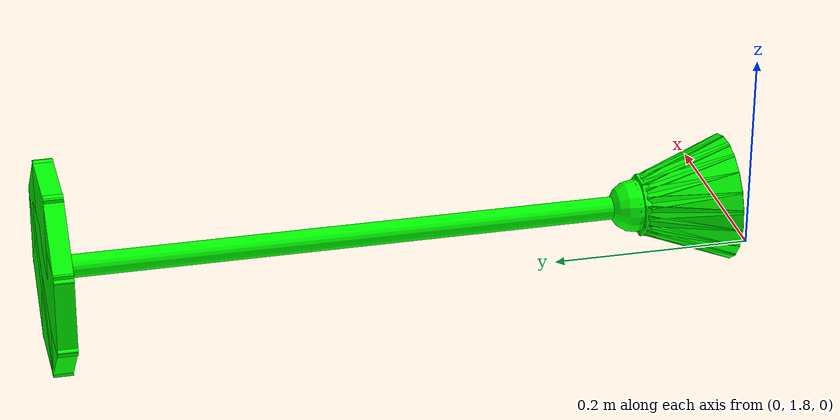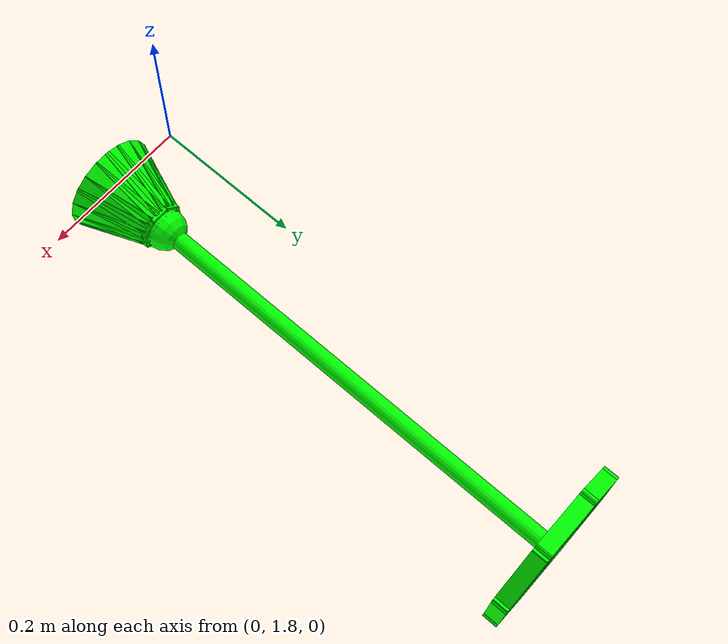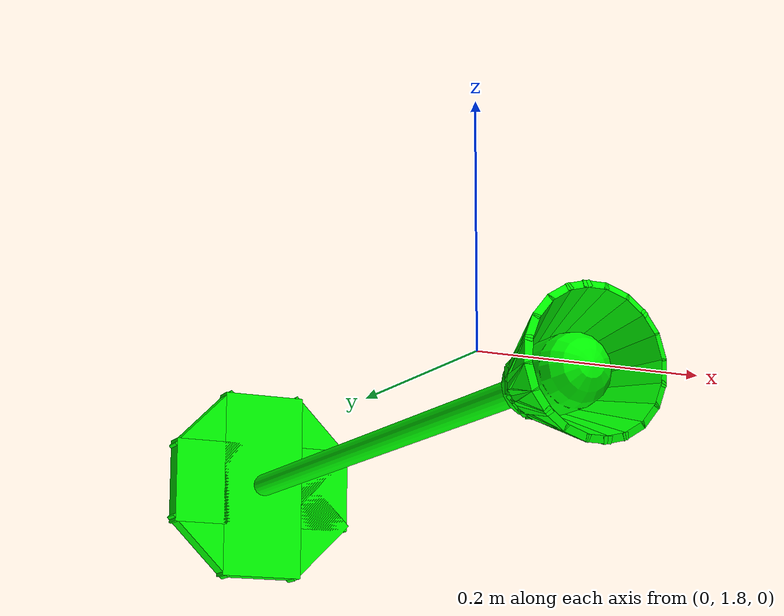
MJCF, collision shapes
<mujoco model="LightFixture2_24118f26">
  <compiler autolimits="true" boundmass="0.01" angle="radian"/>
  <default>
    <default class="/">
      <default class="__VISUAL_MJT__">
        <geom contype="0" conaffinity="0" group="0" mass="1e-08"/>
      </default>
      <default class="__STRUCTURAL_MJT__">
        <geom contype="8" conaffinity="15" group="4" friction="0.90000000000000002 0.90000000000000002 0.001" density="500" solref="0.025000000000000001 1" solimp="0.998 0.998 0.001"/>
      </default>
      <default class="__DYNAMIC_MJT__">
        <geom contype="1" conaffinity="15" group="4" friction="0.90000000000000002 0.90000000000000002 0.001" density="500" solref="0.025000000000000001 1" solimp="0.998 0.998 0.001"/>
      </default>
      <default class="__ARTICULABLE_DYNAMIC_MJT__">
        <geom contype="0" conaffinity="7" group="4" friction="0.90000000000000002 0.90000000000000002 0.001" density="500" solref="0.025000000000000001 1" solimp="0.998 0.998 0.001"/>
      </default>
    </default>
  </default>
  <asset>
    <material name="material_Glass_Detailed_Lit_Medium_Mat" class="/" specular="0.5" shininess="0.5" rgba="1 1 1 0.10000000000000001"/>
    <texture name="Copper_AlbedoTransparency" type="2d" file="Copper_AlbedoTransparency.png"/>
    <material name="material_Copper_AlbedoTransparency" class="/" texture="Copper_AlbedoTransparency" specular="0.5" shininess="0.5" rgba="1 1 1 1"/>
    <material name="material_ToasterDarkMat" class="/" specular="0.5" shininess="0.5" rgba="0.048307559999999999 0.047520819999999998 0.05379747 1"/>
    <material name="material_Light" class="/" specular="0.5" shininess="0.5" rgba="1 0.94411769999999995 0.86029409999999995 1"/>
    <mesh name="LightFixture2_24118f26_LightFixture2_24118f26_0" class="/" file="LightFixture2_24118f26_LightFixture2_24118f26/LightFixture2_24118f26_LightFixture2_24118f26_0.obj" scale="1 1 1" inertia="legacy"/>
    <mesh name="LightFixture2_24118f26_LightFixture2_24118f26_1" class="/" file="LightFixture2_24118f26_LightFixture2_24118f26/LightFixture2_24118f26_LightFixture2_24118f26_1.obj" scale="1 1 1" inertia="legacy"/>
    <mesh name="LightFixture2_24118f26_LightFixture2_24118f26_2" class="/" file="LightFixture2_24118f26_LightFixture2_24118f26/LightFixture2_24118f26_LightFixture2_24118f26_2.obj" scale="1 1 1" inertia="legacy"/>
    <mesh name="LightFixture2_24118f26_LightFixture2_24118f26_3" class="/" file="LightFixture2_24118f26_LightFixture2_24118f26/LightFixture2_24118f26_LightFixture2_24118f26_3.obj" scale="1 1 1" inertia="legacy"/>
  </asset>
  <worldbody>
    <body name="LightFixture2_24118f26">
      <body name="LightFixture2_24118f26_LightFixture2_24118f26" pos="-0 0 0" quat="1 0 0 0">
        <geom name="LightFixture2_24118f26_LightFixture2_24118f26_0" class="__VISUAL_MJT__" type="mesh" material="material_Glass_Detailed_Lit_Medium_Mat" mesh="LightFixture2_24118f26_LightFixture2_24118f26_0"/>
        <geom name="LightFixture2_24118f26_LightFixture2_24118f26_1" class="__VISUAL_MJT__" type="mesh" material="material_Copper_AlbedoTransparency" mesh="LightFixture2_24118f26_LightFixture2_24118f26_1"/>
        <geom name="LightFixture2_24118f26_LightFixture2_24118f26_2" class="__VISUAL_MJT__" type="mesh" material="material_ToasterDarkMat" mesh="LightFixture2_24118f26_LightFixture2_24118f26_2"/>
        <geom name="LightFixture2_24118f26_LightFixture2_24118f26_3" class="__VISUAL_MJT__" type="mesh" material="material_Light" mesh="LightFixture2_24118f26_LightFixture2_24118f26_3"/>
        <geom name="LightFixture2_24118f26_LightFixture2_24118f26_PrimitiveCollider_0" class="__DYNAMIC_MJT__" type="box" size="0.044754870235919952 0.010146094486117363 0.099600106477737427" rgba="0 1 0 1" pos="0.099999994039535522 2.4907031059265137 0" quat="0 1 0 0"/>
        <geom name="LightFixture2_24118f26_LightFixture2_24118f26_PrimitiveCollider_1" class="__DYNAMIC_MJT__" type="box" size="0.044754870235919952 0.010146094486117363 0.099600106477737427" rgba="0 1 0 1" pos="0.099999994039535522 2.4907031059265137 0" quat="0 0.70710716861662282 0 -0.70710639375626005"/>
        <geom name="LightFixture2_24118f26_LightFixture2_24118f26_PrimitiveCollider_2" class="__DYNAMIC_MJT__" type="box" size="0.044754866510629654 0.010146094486117363 0.099600091576576233" rgba="0 1 0 1" pos="0.099999994039535522 2.4907031059265137 0" quat="0 0.3826837590247722 0 -0.92387939720434842"/>
        <geom name="LightFixture2_24118f26_LightFixture2_24118f26_PrimitiveCollider_3" class="__DYNAMIC_MJT__" type="box" size="0.044754870235919952 0.010146094486117363 0.099600106477737427" rgba="0 1 0 1" pos="0.099999994039535522 2.4907031059265137 0" quat="0 0.92387944627232255 0 -0.38268364056430054"/>
        <geom name="LightFixture2_24118f26_LightFixture2_24118f26_PrimitiveCollider_4" class="__DYNAMIC_MJT__" type="capsule" size="0.011795935221016407 0.28961301129311323" rgba="0 1 0 1" pos="0.099999994039535522 2.1875855922698975 0" quat="0.65328142145803181 0.65328142145803192 0.27059819729217222 -0.27059819729217227"/>
        <geom name="LightFixture2_24118f26_LightFixture2_24118f26_PrimitiveCollider_5" class="__DYNAMIC_MJT__" type="capsule" size="0.02753765881061554 1.0000000000000001e-05" rgba="0 1 0 1" pos="0.099999994039535522 1.8879337310791016 0" quat="0.65328142145803181 0.65328142145803192 0.27059819729217222 -0.27059819729217227"/>
        <geom name="LightFixture2_24118f26_LightFixture2_24118f26_PrimitiveCollider_6" class="__DYNAMIC_MJT__" type="box" size="0.011454922147095203 0.0032480955123901367 0.030229024589061737" rgba="0 1 0 1" pos="0.099999994039535522 1.880601167678833 0" quat="0 1 0 0"/>
        <geom name="LightFixture2_24118f26_LightFixture2_24118f26_PrimitiveCollider_7" class="__DYNAMIC_MJT__" type="box" size="0.011454922147095203 0.0032480955123901367 0.030229024589061737" rgba="0 1 0 1" pos="0.099999994039535522 1.880601167678833 0" quat="0 0.70710716861662282 0 -0.70710639375626005"/>
        <geom name="LightFixture2_24118f26_LightFixture2_24118f26_PrimitiveCollider_8" class="__DYNAMIC_MJT__" type="box" size="0.011454921215772629 0.0032480955123901367 0.030229020863771439" rgba="0 1 0 1" pos="0.099999994039535522 1.880601167678833 0" quat="0 0.3826837590247722 0 -0.92387939720434842"/>
        <geom name="LightFixture2_24118f26_LightFixture2_24118f26_PrimitiveCollider_9" class="__DYNAMIC_MJT__" type="box" size="0.011454922147095203 0.0032480955123901367 0.030229024589061737" rgba="0 1 0 1" pos="0.099999994039535522 1.880601167678833 0" quat="0 0.92387944627232255 0 -0.38268364056430054"/>
        <geom name="LightFixture2_24118f26_LightFixture2_24118f26_PrimitiveCollider_10" class="__DYNAMIC_MJT__" type="capsule" size="0.031119788065552711 0.015546990558505058" rgba="0 1 0 1" pos="0.099999994039535522 1.8424336910247803 0" quat="0.65328142145803181 0.65328142145803192 0.27059819729217222 -0.27059819729217227"/>
        <geom name="LightFixture2_24118f26_LightFixture2_24118f26_PrimitiveCollider_11" class="__DYNAMIC_MJT__" type="box" size="0.011454927735030651 0.003248095978051424 0.048705104738473892" rgba="0 1 0 1" pos="0.099999994039535522 1.8348104953765869 0.043759804219007492" quat="0 0 0.56462786680718169 -0.82534560762432829"/>
        <geom name="LightFixture2_24118f26_LightFixture2_24118f26_PrimitiveCollider_12" class="__DYNAMIC_MJT__" type="box" size="0.011454922147095203 0.003248095978051424 0.048705101013183594" rgba="0 1 0 1" pos="0.099999994039535522 1.8348104953765869 -0.043759800493717194" quat="0.56462786680718169 0.82534560762432829 0 0"/>
        <geom name="LightFixture2_24118f26_LightFixture2_24118f26_PrimitiveCollider_13" class="__DYNAMIC_MJT__" type="box" size="0.011454921215772629 0.0032480955123901367 0.048705093562602997" rgba="0 1 0 1" pos="0.11371384561061859 1.8348104953765869 0.041555404663085938" quat="-0.08960984723342473 -0.13098731748194209 0.55747169729439694 -0.81488508677812455"/>
        <geom name="LightFixture2_24118f26_LightFixture2_24118f26_PrimitiveCollider_14" class="__DYNAMIC_MJT__" type="box" size="0.011454921215772629 0.0032480955123901367 0.048705093562602997" rgba="0 1 0 1" pos="0.086286142468452454 1.8348104953765869 -0.041555434465408325" quat="0.55747169729439694 0.81488508677812455 0.08960984723342473 -0.13098731748194209"/>
        <geom name="LightFixture2_24118f26_LightFixture2_24118f26_PrimitiveCollider_15" class="__DYNAMIC_MJT__" type="box" size="0.011454927735030651 0.0032480955123901367 0.048705112189054489" rgba="0 1 0 1" pos="0.12679602205753326 1.8348104953765869 0.034596160054206848" quat="-0.18270228005644074 -0.26706536438564932 0.53425130896241579 -0.78094270396725241"/>
        <geom name="LightFixture2_24118f26_LightFixture2_24118f26_PrimitiveCollider_16" class="__DYNAMIC_MJT__" type="box" size="0.011454923078417778 0.0032480955123901367 0.048705101013183594" rgba="0 1 0 1" pos="0.073203966021537781 1.8348104953765869 -0.03459615632891655" quat="0.53425130896241579 0.78094270396725241 0.18270228005644074 -0.26706536438564932"/>
        <geom name="LightFixture2_24118f26_LightFixture2_24118f26_PrimitiveCollider_17" class="__DYNAMIC_MJT__" type="box" size="0.011454924941062927 0.003248095978051424 0.048705104738473892" rgba="0 1 0 1" pos="0.13529318571090698 1.8348104953765869 0.025871073827147484" quat="-0.25526990063607841 -0.37314114874816606 0.50362876230497933 -0.73618002602576793"/>
        <geom name="LightFixture2_24118f26_LightFixture2_24118f26_PrimitiveCollider_18" class="__DYNAMIC_MJT__" type="box" size="0.011454922147095203 0.003248095978051424 0.048705104738473892" rgba="0 1 0 1" pos="0.064706809818744659 1.8348104953765869 -0.025871070101857185" quat="0.50362876230497933 0.73618002602576793 0.25526990063607841 -0.37314114874816606"/>
        <geom name="LightFixture2_24118f26_LightFixture2_24118f26_PrimitiveCollider_19" class="__DYNAMIC_MJT__" type="box" size="0.011454925872385502 0.003248095978051424 0.048705104738473892" rgba="0 1 0 1" pos="0.14197434484958649 1.8348104953765869 0.012372270226478577" quat="-0.33813346229384855 -0.49426707414429566 0.45218402208039071 -0.66098065877089984"/>
        <geom name="LightFixture2_24118f26_LightFixture2_24118f26_PrimitiveCollider_20" class="__DYNAMIC_MJT__" type="box" size="0.011454924941062927 0.003248095978051424 0.048705104738473892" rgba="0 1 0 1" pos="0.058025632053613663 1.8348104953765869 -0.012372296303510666" quat="0.45218402208039071 0.66098065877089984 0.33813346229384855 -0.49426707414429566"/>
        <geom name="LightFixture2_24118f26_LightFixture2_24118f26_PrimitiveCollider_21" class="__DYNAMIC_MJT__" type="box" size="0.011454925872385502 0.0032480962108820677 0.048705104738473892" rgba="0 1 0 1" pos="0.1436932384967804 1.8348104953765869 -0.0024124328047037125" quat="-0.41010985121944132 -0.59947868307676289 0.38809088357610189 -0.56729241538596165"/>
        <geom name="LightFixture2_24118f26_LightFixture2_24118f26_PrimitiveCollider_22" class="__DYNAMIC_MJT__" type="box" size="0.011454925872385502 0.0032480962108820677 0.048705104738473892" rgba="0 1 0 1" pos="0.056306738406419754 1.8348104953765869 0.0024124663323163986" quat="0.38809088357610189 0.56729241538596165 0.41010985121944132 -0.59947868307676289"/>
        <geom name="LightFixture2_24118f26_LightFixture2_24118f26_PrimitiveCollider_23" class="__DYNAMIC_MJT__" type="box" size="0.011454922147095203 0.0032480955123901367 0.048705093562602997" rgba="0 1 0 1" pos="0.14107394218444824 1.8348104953765869 -0.015094738453626633" quat="-0.46301987215692536 -0.67681991247790263 0.3231366238250547 -0.4723453465465009"/>
        <geom name="LightFixture2_24118f26_LightFixture2_24118f26_PrimitiveCollider_24" class="__DYNAMIC_MJT__" type="box" size="0.011454922147095203 0.0032480955123901367 0.048705093562602997" rgba="0 1 0 1" pos="0.058926049619913101 1.8348104953765869 0.015094740316271782" quat="0.3231366238250547 0.4723453465465009 0.46301987215692536 -0.67681991247790263"/>
        <geom name="LightFixture2_24118f26_LightFixture2_24118f26_PrimitiveCollider_25" class="__DYNAMIC_MJT__" type="box" size="0.011454922147095203 0.0032480955123901367 0.048705101013183594" rgba="0 1 0 1" pos="0.13405239582061768 1.8348104953765869 -0.027483701705932617" quat="-0.50942735963853325 -0.74465625162272842 0.2434920178538362 -0.35592480864975906"/>
        <geom name="LightFixture2_24118f26_LightFixture2_24118f26_PrimitiveCollider_26" class="__DYNAMIC_MJT__" type="box" size="0.011454924941062927 0.0032480955123901367 0.048705101013183594" rgba="0 1 0 1" pos="0.065947592258453369 1.8348104953765869 0.027483703568577766" quat="0.2434920178538362 0.35592480864975906 0.50942735963853325 -0.74465625162272842"/>
        <geom name="LightFixture2_24118f26_LightFixture2_24118f26_PrimitiveCollider_27" class="__DYNAMIC_MJT__" type="box" size="0.011454921215772629 0.0032480950467288494 0.048705093562602997" rgba="0 1 0 1" pos="0.1228705421090126 1.8348104953765869 -0.03730764240026474" quat="-0.54341650809533937 -0.79433984734331475 0.15330733584660886 -0.22409722539041504"/>
        <geom name="LightFixture2_24118f26_LightFixture2_24118f26_PrimitiveCollider_28" class="__DYNAMIC_MJT__" type="box" size="0.011454921215772629 0.0032480950467288494 0.048705089837312698" rgba="0 1 0 1" pos="0.077129445970058441 1.8348104953765869 0.037307612597942352" quat="0.15330733584660886 0.22409722539041504 0.54341650809533937 -0.79433984734331475"/>
        <geom name="LightFixture2_24118f26_LightFixture2_24118f26_PrimitiveCollider_29" class="__DYNAMIC_MJT__" type="box" size="0.011454922147095203 0.0032480950467288494 0.048705093562602997" rgba="0 1 0 1" pos="0.11095008254051208 1.8348104953765869 -0.042367652058601379" quat="-0.56011909386201053 -0.81875491346562002 0.071212515412630864 -0.10409500475868795"/>
        <geom name="LightFixture2_24118f26_LightFixture2_24118f26_PrimitiveCollider_30" class="__DYNAMIC_MJT__" type="box" size="0.011454922147095203 0.0032480950467288494 0.048705093562602997" rgba="0 1 0 1" pos="0.08904990553855896 1.8348104953765869 0.042367622256278992" quat="0.071212515412630864 0.10409500475868795 0.56011909386201053 -0.81875491346562002"/>
      </body>
    </body>
  </worldbody>
</mujoco>
